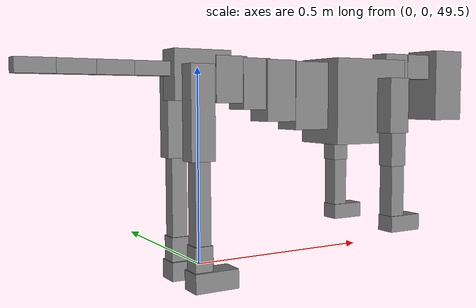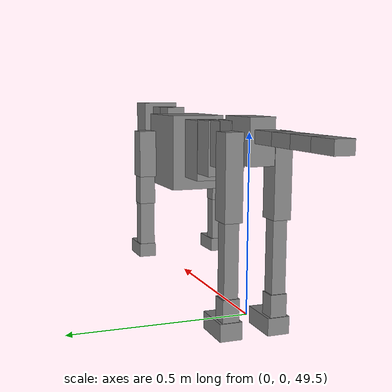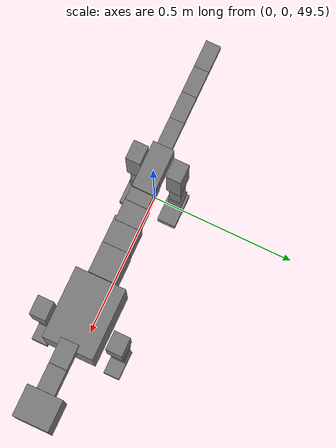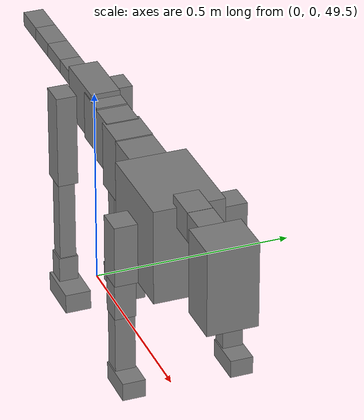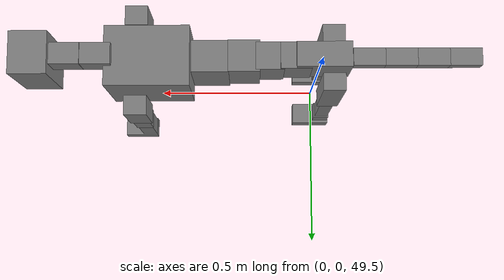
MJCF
<mujoco model="dog">

    <default>
        <joint armature="0.02" stiffness="1" damping="0.2" limited="true"/>
        <geom condim="3" friction="1 0.05 0.05" margin="0.01"/>
        <motor ctrllimited="true" ctrlrange="-1.0 1.0" forcelimited="true" gear="50"/>
    </default>

    <compiler inertiafromgeom="true" angle="radian"/>

    <option timestep="0.016" iterations="50" tolerance="1e-10" solver="Newton" jacobian="dense" cone="pyramidal"/>

    <size nconmax="20000" njmax="60000" nstack="5000000"/>
    <visual>
        <map force="0.1" zfar="30"/>
        <rgba haze="0.15 0.25 0.35 1"/>
        <quality shadowsize="2048"/>
        <global offwidth="800" offheight="800"/>
    </visual>

    <asset>
        <texture type="skybox" builtin="gradient" rgb1="0.3 0.5 0.7" rgb2="0 0 0" width="512" height="512"/>
        <texture name="texplane" type="2d" builtin="checker" rgb1=".2 .3 .4" rgb2=".1 0.15 0.2" width="512" height="512"
                 mark="cross" markrgb=".8 .8 .8"/>
        <texture name="texgeom" type="cube" builtin="flat" mark="cross" width="127" height="1278" rgb1="0.8 0.6 0.4"
                 rgb2="0.8 0.6 0.4" markrgb="1 1 1" random="0.01"/>

        <material name="matplane" reflectance="0.3" texture="texplane" texrepeat="1 1" texuniform="true"/>
        <material name="matgeom" texture="texgeom" texuniform="true" rgba="0.8 0.6 .4 1"/>
    </asset>

    <worldbody>
        <geom name="floor" pos="0 0 0" size="0 0 .25" type="plane" material="matplane" condim="3"/>

        <light directional="false" diffuse=".2 .2 .2" specular="0 0 0" pos="0 0 5" dir="0 0 -1" castshadow="false"/>
        <light mode="targetbodycom" target="torso" directional="false" diffuse=".8 .8 .8" specular="0.3 0.3 0.3"
               pos="0 0 4.0" dir="0 0 -1"/>

        <body name="root" pos="0 0 50">
            <freejoint name="root_1"/>
            <geom type="box" pos="0 0 -0.02" size="0.0774  0.0358  0.063" density="2030"/>

            <body name="spine1" pos="0.054 0 0">
                <joint name="spine1_y" axis="0 1 0" range="0 0.7" limited="true"/>
                <geom type="box" pos="0.02375 0 -0.03" size="0.04375  0.0375  0.05985" density="2030"/>

                <body name="spine2" pos="0.0612 0 0">
                    <joint name="spine2_y" axis="0 1 0" range="-0.15 0.15" limited="true"/>
                    <geom type="box" pos="0.03555  0  -0.04" size="0.04055  0.039  0.06615" density="2030"/>

                    <body name="spine3" pos="0.0730 0 0">
                        <joint name="spine3_y" axis="0 1 0" range="-0.15 0.15" limited="true"/>
                        <geom type="box" pos="0.03555  0  -0.057" size="0.04555  0.0445  0.081" density="2030"/>

                        <body name="spine4" pos="0.0780 0 0">
                            <joint name="spine4_y" axis="0 1 0" range="-0.15 0.15" limited="true"/>
                            <geom type="box" pos="0.05265  0  -0.07" size="0.05265  0.045  0.09135" density="2030"/>

                            <body name="torso" pos="0.1082 0 0">
                                <joint name="torso_y" axis="0 1 0" range="-0.15 0.15" limited="true"/>
                                <geom type="box" pos="0.11925  0  -0.085" size="0.11925  0.085  0.11745"
                                      density="2030"/>

                                <body name="neck1" pos="0.2160  0   0.0180">
                                    <joint name="neck1_y" axis="0 1 0" range="-1.2  -1" limited="true"/>
                                    <geom type="box" pos="0.0423  0  0" size="0.0423  0.03  0.036" density="2325"/>

                                    <body name="neck2" pos="0.0853  0  0">
                                        <joint name="neck2_y" axis="0 1 0" range="0.1  0" limited="true"/>
                                        <geom type="box" pos="0.0423  0  0" size="0.0423  0.03  0.036" density="2325"/>

                                        <body name="head" pos="0.0853  0  0">
                                            <joint name="head_y" axis="0 1 0" range="-0.3  -0.2" limited="true"/>
                                            <geom type="box" pos="0.0531  0  -0.055" size="0.0531  0.06  0.1044"
                                                  density="4030"/>

                                        </body>
                                    </body>
                                </body>

                                <body name="front_shoulder" pos="0.156  0   -0.0480">
                                    <joint name="front_shoulder_y" axis="0 1 0" range="-1 1.5" limited="true"/>
                                    <geom type="box" pos="0 0.13 -0.0485" size="0.0323  0.0276  0.0751" density="1158"/>
                                    <geom type="box" pos="0 -0.13 -0.0485" size="0.0323  0.0276  0.0751"
                                          density="1158"/>

                                    <body name="front_elbow" pos="0  0  -0.0969">
                                        <joint name="front_elbow_y" axis="0 1 0" range="-2 0" limited="true"/>
                                        <geom type="box" pos="0 0.13 -0.0588" size="0.0251  0.0257  0.0588"
                                              density="1081"/>
                                        <geom type="box" pos="0 -0.13 -0.0588" size="0.0251  0.0257  0.0588"
                                              density="1081"/>

                                        <body name="front_wrist" pos="0  0  -0.1176">
                                            <joint name="front_wrist_y" axis="0 1 0" range="-0.2 0" limited="true"/>
                                            <geom type="box" pos="0 0.13 -0.0766" size="0.0218  0.0242  0.0898"
                                                  density="1664"/>
                                            <geom type="box" pos="0 -0.13 -0.0766" size="0.0218  0.0242  0.0898"
                                                  density="1664"/>

                                            <body name="front_finger_end" pos="0  0  -0.1532">
                                                <joint name="front_finger_y" axis="0 1 0" range="-0.4 1"
                                                       limited="true"/>
                                                <geom type="box" pos="0.0273  0.13  -0.0070"
                                                      size="0.0501  0.0273  0.0220" density="1515"/>
                                                <geom type="box" pos="0.0273  -0.13  -0.0070"
                                                      size="0.0501  0.0273  0.0220" density="1515"/>

                                            </body>

                                        </body>
                                    </body>
                                </body>

                            </body>
                        </body>
                    </body>
                </body>
            </body>

            <body name="back_hip" pos="-0.03 0 -0.018">
                <joint name="back_hip_y" axis="0 1 0" range="-1.5 0.3" limited="true"/>
                <geom type="box" pos="0 0.07 -0.0945" size="0.0319  0.0250  0.1173" density="1154"/>
                <geom type="box" pos="0 -0.07 -0.0945" size="0.0319  0.0250  0.1173" density="1154"/>

                <body name="back_knee" pos="0  0  -0.1889">
                    <joint name="back_knee_y" axis="0 1 0" range="0 2.8" limited="true"/>
                    <geom type="box" pos="0 0.07 -0.1198" size="0.0206  0.0203  0.1354" density="1227"/>
                    <geom type="box" pos="0 -0.07 -0.1198" size="0.0206  0.0203  0.1354" density="1227"/>

                    <body name="back_ankle" pos="0  0  -0.2396">
                        <joint name="back_ankle_y" axis="0 1 0" range="-2.2 0" limited="true"/>
                        <geom type="box" pos="0 0.07 -0.0337" size="0.0239  0.0239  0.0449" density="1284"/>
                        <geom type="box" pos="0 -0.07 -0.0337" size="0.0239  0.0239  0.0449" density="1284"/>

                        <body name="back_toe_end" pos="0  0  -0.0674">
                            <joint name="back_toe_y" axis="0 1 0" range="-0.4 1" limited="true"/>
                            <geom type="box" pos="0.0319  0.07  -0.0097" size="0.0586  0.0319  0.0247" density="1515"/>
                            <geom type="box" pos="0.0319  -0.07  -0.0097" size="0.0586  0.0319  0.0247" density="1515"/>

                        </body>
                    </body>
                </body>
            </body>

            <body name="tail1" pos="-0.074 0 -0.006">
                <joint name="tail1_y" axis="0 1 0" range="-0.2 0.2" limited="true"/>
                <geom type="box" pos="-0.0536  0  0" size="0.045  0.025  0.0175" density="1587"/>

                <body name="tail2" pos="-0.09 0 0">
                    <joint name="tail2_y" axis="0 1 0" range="-0.2 0.2" limited="true"/>
                    <geom type="box" pos="-0.0536  0  0" size="0.045  0.025  0.0175" density="1587"/>

                    <body name="tail3" pos="-0.09 0 0">
                        <joint name="tail3_y" axis="0 1 0" range="-0.2 0.2" limited="true"/>
                        <geom type="box" pos="-0.0536  0  0" size="0.045  0.025  0.0175" density="1587"/>

                        <body name="tail4" pos="-0.09 0 0">
                            <joint name="tail4_y" axis="0 1 0" range="-0.2 0.2" limited="true"/>
                            <geom type="box" pos="-0.0536  0  0" size="0.045  0.025  0.0175" density="1587"/>

                        </body>
                    </body>
                </body>
            </body>
        </body>
    </worldbody>

    <actuator>
        <motor joint="spine1_y" forcerange="-150 150     "/>
        <motor joint="spine2_y" forcerange="-150 150     "/>
        <motor joint="spine3_y" forcerange="-150 150     "/>
        <motor joint="spine4_y" forcerange="-150 150     "/>
        <motor joint="torso_y" forcerange="-150 150     "/>
        <motor joint="neck1_y" forcerange="-100 100       "/>
        <motor joint="neck2_y" forcerange="-100 100       "/>
        <motor joint="head_y" forcerange="-150 150       "/>
        <motor joint="front_shoulder_y" forcerange="-113.08 171.19"/>
        <motor joint="front_elbow_y" forcerange="-119.50 167.35"/>
        <motor joint="front_wrist_y" forcerange="-98.60 94.79"/>
        <motor joint="front_finger_y" forcerange="-81.66 24.01"/>
        <motor joint="back_hip_y" forcerange="-218.04 315.72"/>
        <motor joint="back_knee_y" forcerange="-207.62 287.04"/>
        <motor joint="back_angle_y" forcerange="-120.12 162.09"/>
        <motor joint="back_toe_y" forcerange="-90.13 85.46"/>
        <motor joint="tail1_y" forcerange="-50 50     "/>
        <motor joint="tail2_y" forcerange="-50 50     "/>
        <motor joint="tail3_y" forcerange="-50 50     "/>
        <motor joint="tail4_y" forcerange="-50 50     "/>
    </actuator>
</mujoco>
